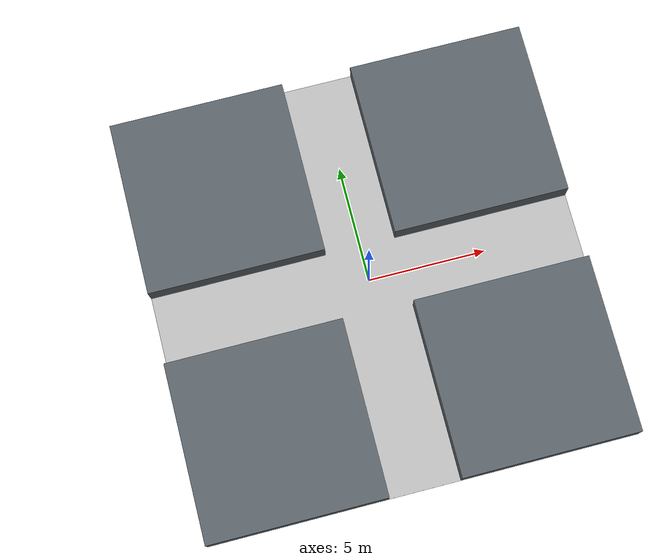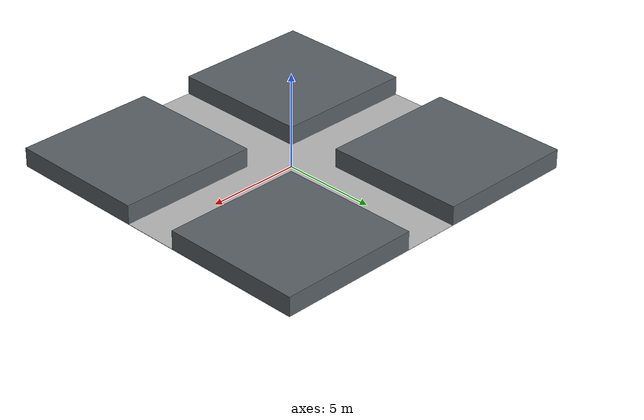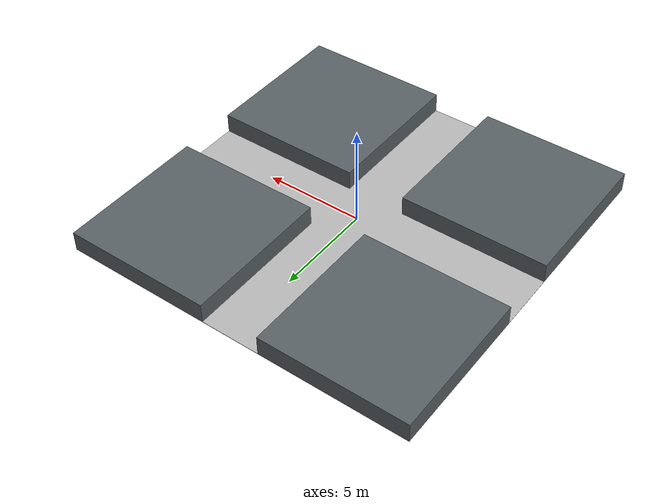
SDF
<?xml version="1.0"?>
<sdf version="1.6">
  <world name="default">
    <gravity>0 0 -9.8</gravity>
    <physics name="default_physics" type="ode">
      <max_step_size>0.002</max_step_size>
      <real_time_factor>1</real_time_factor>
      <real_time_update_rate>500</real_time_update_rate>
    </physics>
    <include><uri>model://sun</uri></include>
    <model name="ground_plane">
      <static>true</static>
      <link name="link">
        <collision name="collision">
          <geometry><box><size>18.000 18.000 0.02</size></box></geometry>
        </collision>
        <visual name="visual">
          <geometry><box><size>18.000 18.000 0.02</size></box></geometry>
          <material>
            <ambient>0.72 0.72 0.72 1</ambient>
            <diffuse>0.72 0.72 0.72 1</diffuse>
          </material>
        </visual>
      </link>
    </model>

    <model name="block_north_west">
      <static>true</static>
      <pose>-5.250 5.250 0.500 0 0 0</pose>
      <link name="link">
        <collision name="collision">
          <geometry><box><size>7.500 7.500 1.000</size></box></geometry>
        </collision>
        <visual name="visual">
          <geometry><box><size>7.500 7.500 1.000</size></box></geometry>
          <material>
            <ambient>0.35 0.38 0.40 1</ambient>
            <diffuse>0.35 0.38 0.40 1</diffuse>
          </material>
        </visual>
      </link>
    </model>

    <model name="block_north_east">
      <static>true</static>
      <pose>5.250 5.250 0.500 0 0 0</pose>
      <link name="link">
        <collision name="collision">
          <geometry><box><size>7.500 7.500 1.000</size></box></geometry>
        </collision>
        <visual name="visual">
          <geometry><box><size>7.500 7.500 1.000</size></box></geometry>
          <material>
            <ambient>0.35 0.38 0.40 1</ambient>
            <diffuse>0.35 0.38 0.40 1</diffuse>
          </material>
        </visual>
      </link>
    </model>

    <model name="block_south_west">
      <static>true</static>
      <pose>-5.250 -5.250 0.500 0 0 0</pose>
      <link name="link">
        <collision name="collision">
          <geometry><box><size>7.500 7.500 1.000</size></box></geometry>
        </collision>
        <visual name="visual">
          <geometry><box><size>7.500 7.500 1.000</size></box></geometry>
          <material>
            <ambient>0.35 0.38 0.40 1</ambient>
            <diffuse>0.35 0.38 0.40 1</diffuse>
          </material>
        </visual>
      </link>
    </model>

    <model name="block_south_east">
      <static>true</static>
      <pose>5.250 -5.250 0.500 0 0 0</pose>
      <link name="link">
        <collision name="collision">
          <geometry><box><size>7.500 7.500 1.000</size></box></geometry>
        </collision>
        <visual name="visual">
          <geometry><box><size>7.500 7.500 1.000</size></box></geometry>
          <material>
            <ambient>0.35 0.38 0.40 1</ambient>
            <diffuse>0.35 0.38 0.40 1</diffuse>
          </material>
        </visual>
      </link>
    </model>
  </world>
</sdf>
